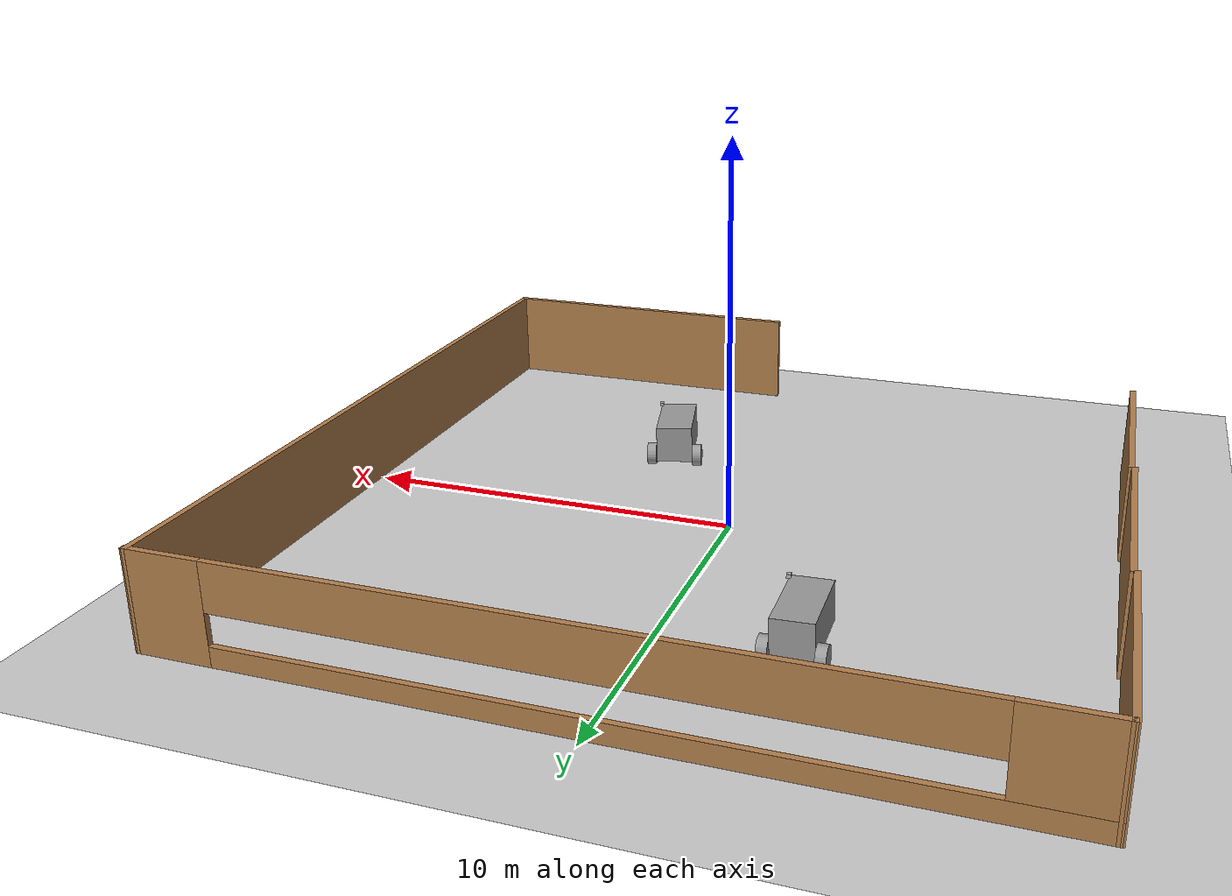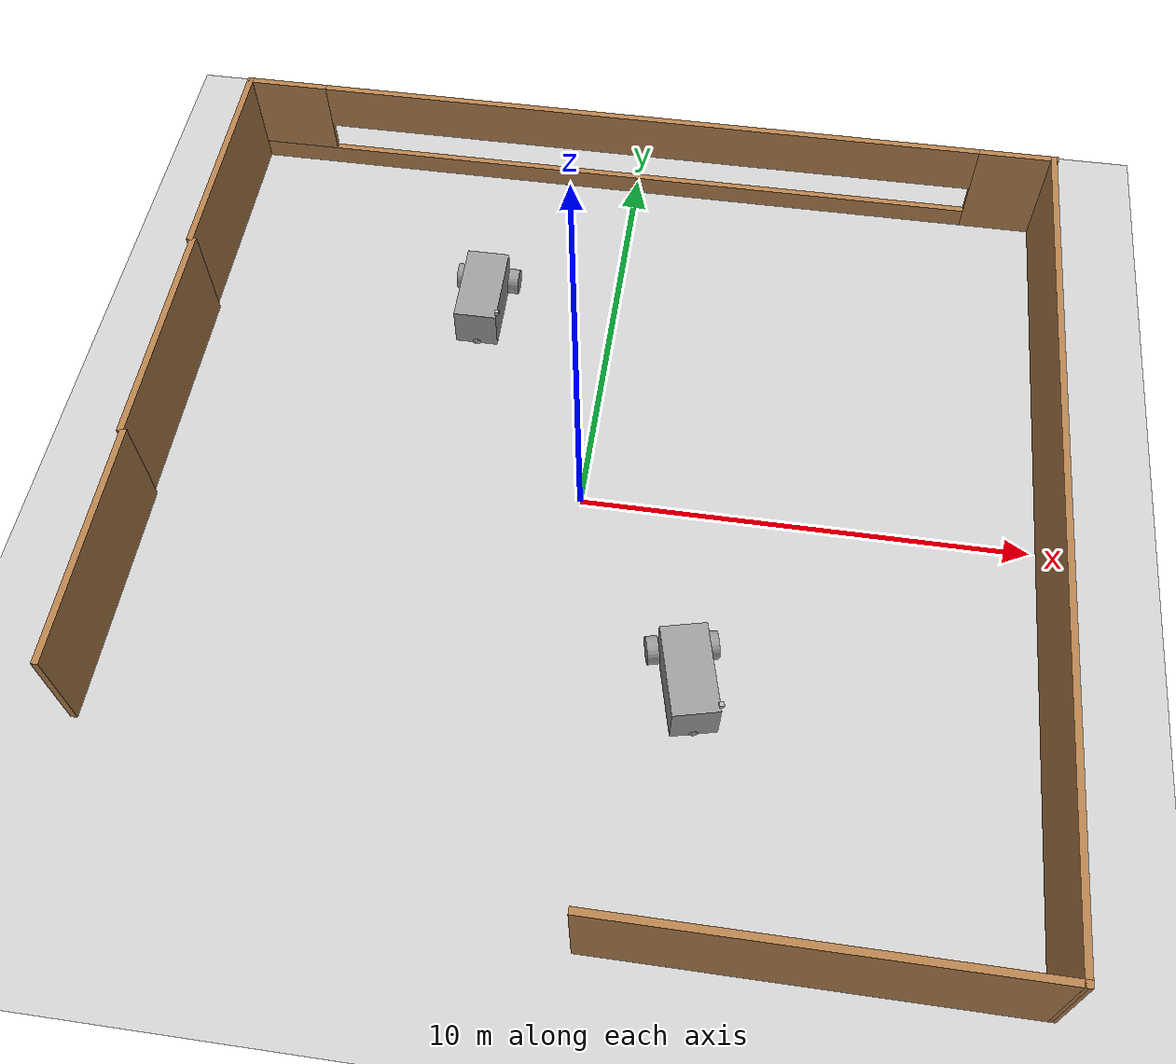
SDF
<sdf version="1.4">
 <world name="default">
  <plugin name="hello_world" filename="libhello_world.so"/>
  <light name="sun" type="directional">
   <pose>0 0 10 0 -0 0</pose>
   <diffuse>0.8 0.8 0.8 1</diffuse>
   <specular>0.2 0.2 0.2 1</specular>
   <attenuation>
    <range>1000</range>
    <constant>0.9</constant>
    <linear>0.01</linear>
    <quadratic>0.001</quadratic>
   </attenuation>
   <direction>-0.5 0.1 -0.9</direction>
  </light>
  <model name="ground_plane">
   <static>1</static>
   <link name="link">
    <collision name="collision">
     <geometry><plane><normal>0 0 1</normal><size>100 100</size></plane></geometry>
     <surface><friction><ode><mu>100</mu><mu2>50</mu2></ode></friction></surface>
    </collision>
    <visual name="visual">
     <cast_shadows>0</cast_shadows>
     <geometry><plane><normal>0 0 1</normal><size>100 100</size></plane></geometry>
     <material>
      <script><uri>file://media/materials/scripts/gazebo.material</uri><name>Gazebo/Grey</name></script>
     </material>
    </visual>
   </link>
  </model>
  <gravity>0 0 -9.8</gravity>
  <magnetic_field>6e-06 2.3e-05 -4.2e-05</magnetic_field>
  <atmosphere type="adiabatic"/>
  <physics name="default_physics" default="0" type="ode">
   <max_step_size>0.001</max_step_size>
   <real_time_factor>1</real_time_factor>
   <real_time_update_rate>1000</real_time_update_rate>
  </physics>
  <scene><ambient>0.4 0.4 0.4 1</ambient><background>0.7 0.7 0.7 1</background><shadows>1</shadows></scene>
  <audio><device>default</device></audio>
  <spherical_coordinates>
   <surface_model>EARTH_WGS84</surface_model>
   <latitude_deg>0</latitude_deg>
   <longitude_deg>0</longitude_deg>
   <elevation>0</elevation>
   <heading_deg>0</heading_deg>
  </spherical_coordinates>
  <model name="our_vehical">
   <link name="link">
    <inertial>
     <mass>1</mass>
     <inertia>
      <ixx>0.122564</ixx>
      <ixy>0</ixy>
      <ixz>0</ixz>
      <iyy>0.407773</iyy>
      <iyz>0</iyz>
      <izz>0.472213</izz>
     </inertia>
    </inertial>
    <pose>-0.506092 0.015491 0.633607 0 -0 0</pose>
    <visual name="visual">
     <geometry><box><size>2 1 1</size></box></geometry>
     <material>
      <script><name>Gazebo/Grey</name><uri>file://media/materials/scripts/gazebo.material</uri></script>
      <shader type="vertex"><normal_map>__default__</normal_map></shader>
      <ambient>0.3 0.3 0.3 1</ambient>
      <diffuse>0.7 0.7 0.7 1</diffuse>
      <specular>0.01 0.01 0.01 1</specular>
      <emissive>0 0 0 1</emissive>
     </material>
    </visual>
    <collision name="collision">
     <geometry><box><size>2 1 1</size></box></geometry>
     <surface>
      <friction>
       <ode><mu>1</mu><mu2>1</mu2><fdir1>0 0 0</fdir1><slip1>0</slip1><slip2>0</slip2></ode>
       <torsional>
        <coefficient>1</coefficient>
        <patch_radius>0</patch_radius>
        <surface_radius>0</surface_radius>
        <use_patch_radius>1</use_patch_radius>
        <ode><slip>0</slip></ode>
       </torsional>
      </friction>
      <bounce><restitution_coefficient>0</restitution_coefficient><threshold>1e+06</threshold></bounce>
      <contact>
       <collide_without_contact>0</collide_without_contact>
       <collide_without_contact_bitmask>1</collide_without_contact_bitmask>
       <collide_bitmask>1</collide_bitmask>
       <ode>
        <soft_cfm>0</soft_cfm>
        <soft_erp>0.2</soft_erp>
        <kp>1e+13</kp>
        <kd>1</kd>
        <max_vel>0.01</max_vel>
        <min_depth>0</min_depth>
       </ode>
       <bullet>
        <split_impulse>1</split_impulse>
        <split_impulse_penetration_threshold>-0.01</split_impulse_penetration_threshold>
        <soft_cfm>0</soft_cfm>
        <soft_erp>0.2</soft_erp>
        <kp>1e+13</kp>
        <kd>1</kd>
       </bullet>
      </contact>
     </surface>
    </collision>
   </link>
   <link name="link_0">
    <inertial>
     <mass>1</mass>
     <inertia><ixx>0.145833</ixx><ixy>0</ixy><ixz>0</ixz><iyy>0.145833</iyy><iyz>0</iyz><izz>0.125</izz></inertia>
    </inertial>
    <pose>0.38 0.650048 0.301789 1.5707 -0 0</pose>
    <visual name="visual">
     <geometry><cylinder><radius>0.3</radius><length>0.25</length></cylinder></geometry>
     <material>
      <lighting>1</lighting>
      <script><uri>file://media/materials/scripts/gazebo.material</uri><name>Gazebo/Grey</name></script>
      <shader type="vertex"><normal_map>__default__</normal_map></shader>
      <ambient>0.3 0.3 0.3 1</ambient>
      <diffuse>0.7 0.7 0.7 1</diffuse>
      <specular>0.01 0.01 0.01 1</specular>
      <emissive>0 0 0 1</emissive>
     </material>
    </visual>
    <collision name="collision">
     <geometry><cylinder><radius>0.3</radius><length>0.25</length></cylinder></geometry>
     <surface>
      <friction>
       <ode><mu>1</mu><mu2>1</mu2><fdir1>0 0 0</fdir1><slip1>0</slip1><slip2>0</slip2></ode>
       <torsional>
        <coefficient>1</coefficient>
        <patch_radius>0</patch_radius>
        <surface_radius>0</surface_radius>
        <use_patch_radius>1</use_patch_radius>
        <ode><slip>0</slip></ode>
       </torsional>
      </friction>
      <bounce><restitution_coefficient>0</restitution_coefficient><threshold>1e+06</threshold></bounce>
      <contact>
       <collide_without_contact>0</collide_without_contact>
       <collide_without_contact_bitmask>1</collide_without_contact_bitmask>
       <collide_bitmask>1</collide_bitmask>
       <ode>
        <soft_cfm>0</soft_cfm>
        <soft_erp>0.2</soft_erp>
        <kp>1e+13</kp>
        <kd>1</kd>
        <max_vel>0.01</max_vel>
        <min_depth>0</min_depth>
       </ode>
       <bullet>
        <split_impulse>1</split_impulse>
        <split_impulse_penetration_threshold>-0.01</split_impulse_penetration_threshold>
        <soft_cfm>0</soft_cfm>
        <soft_erp>0.2</soft_erp>
        <kp>1e+13</kp>
        <kd>1</kd>
       </bullet>
      </contact>
     </surface>
    </collision>
   </link>
   <link name="link_0_clone">
    <inertial>
     <mass>1</mass>
     <inertia><ixx>0.145833</ixx><ixy>0</ixy><ixz>0</ixz><iyy>0.145833</iyy><iyz>0</iyz><izz>0.125</izz></inertia>
    </inertial>
    <pose>0.357708 -0.619949 0.327389 1.5707 -0 0</pose>
    <visual name="visual">
     <geometry><cylinder><radius>0.3</radius><length>0.25</length></cylinder></geometry>
     <material>
      <lighting>1</lighting>
      <script><uri>file://media/materials/scripts/gazebo.material</uri><name>Gazebo/Grey</name></script>
      <shader type="vertex"><normal_map>__default__</normal_map></shader>
      <ambient>0.3 0.3 0.3 1</ambient>
      <diffuse>0.7 0.7 0.7 1</diffuse>
      <specular>0.01 0.01 0.01 1</specular>
      <emissive>0 0 0 1</emissive>
     </material>
    </visual>
    <collision name="collision">
     <geometry><cylinder><radius>0.3</radius><length>0.25</length></cylinder></geometry>
     <surface>
      <friction>
       <ode><mu>1</mu><mu2>1</mu2><fdir1>0 0 0</fdir1><slip1>0</slip1><slip2>0</slip2></ode>
       <torsional>
        <coefficient>1</coefficient>
        <patch_radius>0</patch_radius>
        <surface_radius>0</surface_radius>
        <use_patch_radius>1</use_patch_radius>
        <ode><slip>0</slip></ode>
       </torsional>
      </friction>
      <bounce><restitution_coefficient>0</restitution_coefficient><threshold>1e+06</threshold></bounce>
      <contact>
       <collide_without_contact>0</collide_without_contact>
       <collide_without_contact_bitmask>1</collide_without_contact_bitmask>
       <collide_bitmask>1</collide_bitmask>
       <ode>
        <soft_cfm>0</soft_cfm>
        <soft_erp>0.2</soft_erp>
        <kp>1e+13</kp>
        <kd>1</kd>
        <max_vel>0.01</max_vel>
        <min_depth>0</min_depth>
       </ode>
       <bullet>
        <split_impulse>1</split_impulse>
        <split_impulse_penetration_threshold>-0.01</split_impulse_penetration_threshold>
        <soft_cfm>0</soft_cfm>
        <soft_erp>0.2</soft_erp>
        <kp>1e+13</kp>
        <kd>1</kd>
       </bullet>
      </contact>
     </surface>
    </collision>
   </link>
   <link name="link_1">
    <inertial>
     <mass>1</mass>
     <inertia><ixx>0.1</ixx><ixy>0</ixy><ixz>0</ixz><iyy>0.1</iyy><iyz>0</iyz><izz>0.1</izz></inertia>
    </inertial>
    <pose>-1.39104 0.018049 0.161103 0 -0 0</pose>
    <visual name="visual">
     <geometry><sphere><radius>0.15</radius></sphere></geometry>
     <material>
      <lighting>1</lighting>
      <script><uri>file://media/materials/scripts/gazebo.material</uri><name>Gazebo/Grey</name></script>
      <shader type="vertex"><normal_map>__default__</normal_map></shader>
      <ambient>0.3 0.3 0.3 1</ambient>
      <diffuse>0.7 0.7 0.7 1</diffuse>
      <specular>0.01 0.01 0.01 1</specular>
      <emissive>0 0 0 1</emissive>
     </material>
    </visual>
    <collision name="collision">
     <geometry><sphere><radius>0.15</radius></sphere></geometry>
     <surface>
      <friction>
       <ode><mu>1</mu><mu2>1</mu2><fdir1>0 0 0</fdir1><slip1>0</slip1><slip2>0</slip2></ode>
       <torsional>
        <coefficient>1</coefficient>
        <patch_radius>0</patch_radius>
        <surface_radius>0</surface_radius>
        <use_patch_radius>1</use_patch_radius>
        <ode><slip>0</slip></ode>
       </torsional>
      </friction>
      <bounce><restitution_coefficient>0</restitution_coefficient><threshold>1e+06</threshold></bounce>
      <contact>
       <collide_without_contact>0</collide_without_contact>
       <collide_without_contact_bitmask>1</collide_without_contact_bitmask>
       <collide_bitmask>1</collide_bitmask>
       <ode>
        <soft_cfm>0</soft_cfm>
        <soft_erp>0.2</soft_erp>
        <kp>1e+13</kp>
        <kd>1</kd>
        <max_vel>0.01</max_vel>
        <min_depth>0</min_depth>
       </ode>
       <bullet>
        <split_impulse>1</split_impulse>
        <split_impulse_penetration_threshold>-0.01</split_impulse_penetration_threshold>
        <soft_cfm>0</soft_cfm>
        <soft_erp>0.2</soft_erp>
        <kp>1e+13</kp>
        <kd>1</kd>
       </bullet>
      </contact>
     </surface>
    </collision>
   </link>
   <model name="camera">
    <pose>-1.37481 -0.495871 1.17973 0 -0 0</pose>
    <link name="link">
     <inertial>
      <mass>0.1</mass>
      <inertia>
       <ixx>0.000166667</ixx>
       <iyy>0.000166667</iyy>
       <izz>0.000166667</izz>
       <ixy>0</ixy>
       <ixz>0</ixz>
       <iyz>0</iyz>
      </inertia>
     </inertial>
     <collision name="collision"><geometry><box><size>0.1 0.1 0.1</size></box></geometry></collision>
     <visual name="visual"><geometry><box><size>0.1 0.1 0.1</size></box></geometry></visual>
     <sensor name="camera" type="camera">
      <camera name="__default__">
       <horizontal_fov>1.047</horizontal_fov>
       <image><width>320</width><height>240</height></image>
       <clip><near>0.1</near><far>100</far></clip>
      </camera>
      <always_on>1</always_on>
      <update_rate>30</update_rate>
      <visualize>1</visualize>
     </sensor>
    </link>
   </model>
   <joint name="link_JOINT_0" type="revolute">
    <parent>link</parent>
    <child>link_0</child>
    <axis>
     <xyz>0 0 1</xyz>
     <use_parent_model_frame>0</use_parent_model_frame>
     <limit>
      <lower>-1.79769e+308</lower>
      <upper>1.79769e+308</upper>
      <effort>-1</effort>
      <velocity>-1</velocity>
     </limit>
     <dynamics>
      <spring_reference>0</spring_reference>
      <spring_stiffness>0</spring_stiffness>
      <damping>0</damping>
      <friction>0</friction>
     </dynamics>
    </axis>
    <physics>
     <ode><limit><cfm>0</cfm><erp>0.2</erp></limit><suspension><cfm>0</cfm><erp>0.2</erp></suspension></ode>
    </physics>
   </joint>
   <joint name="link_JOINT_2" type="revolute">
    <parent>link</parent>
    <child>link_0_clone</child>
    <axis>
     <xyz>0 0 1</xyz>
     <use_parent_model_frame>0</use_parent_model_frame>
     <limit>
      <lower>-1.79769e+308</lower>
      <upper>1.79769e+308</upper>
      <effort>-1</effort>
      <velocity>-1</velocity>
     </limit>
     <dynamics>
      <spring_reference>0</spring_reference>
      <spring_stiffness>0</spring_stiffness>
      <damping>0</damping>
      <friction>0</friction>
     </dynamics>
    </axis>
    <physics>
     <ode><limit><cfm>0</cfm><erp>0.2</erp></limit><suspension><cfm>0</cfm><erp>0.2</erp></suspension></ode>
    </physics>
   </joint>
   <joint name="link_JOINT_3" type="ball">
    <parent>link</parent>
    <child>link_1</child>
    <physics>
     <ode><limit><cfm>0</cfm><erp>0.2</erp></limit><suspension><cfm>0</cfm><erp>0.2</erp></suspension></ode>
    </physics>
   </joint>
   <joint name="link_JOINT_7" type="revolute">
    <parent>link</parent>
    <child>camera::link</child>
    <axis>
     <xyz>1 0 0</xyz>
     <use_parent_model_frame>0</use_parent_model_frame>
     <limit>
      <lower>-1.79769e+308</lower>
      <upper>1.79769e+308</upper>
      <effort>-1</effort>
      <velocity>-1</velocity>
     </limit>
     <dynamics>
      <spring_reference>0</spring_reference>
      <spring_stiffness>0</spring_stiffness>
      <damping>0</damping>
      <friction>0</friction>
     </dynamics>
    </axis>
    <physics>
     <ode><limit><cfm>0</cfm><erp>0.2</erp></limit><suspension><cfm>0</cfm><erp>0.2</erp></suspension></ode>
    </physics>
   </joint>
   <static>0</static>
   <plugin name="follower" filename="libFollowerPlugin.so"/>
   <pose>-3.1874 5.57615 -0.012182 0.020164 0.000538 1.58912</pose>
  </model>
  <model name="newwall">
   <link name="Wall_3">
    <pose>5.66053 -9.81794 0 0 -0 0</pose>
    <visual name="Wall_3_Visual">
     <pose>0 0 1.25 0 -0 0</pose>
     <geometry><box><size>9 0.15 2.5</size></box></geometry>
     <material>
      <script><uri>file://media/materials/scripts/gazebo.material</uri><name>Gazebo/Wood</name></script>
      <ambient>1 1 1 1</ambient>
     </material>
     <meta><layer>0</layer></meta>
    </visual>
    <collision name="Wall_3_Collision">
     <pose>0 0 1.25 0 -0 0</pose>
     <geometry><box><size>9 0.15 2.5</size></box></geometry>
     <surface>
      <friction>
       <ode><mu>1</mu><mu2>1</mu2><fdir1>0 0 0</fdir1><slip1>0</slip1><slip2>0</slip2></ode>
       <torsional>
        <coefficient>1</coefficient>
        <patch_radius>0</patch_radius>
        <surface_radius>0</surface_radius>
        <use_patch_radius>1</use_patch_radius>
        <ode><slip>0</slip></ode>
       </torsional>
      </friction>
      <bounce><restitution_coefficient>0</restitution_coefficient><threshold>1e+06</threshold></bounce>
      <contact>
       <collide_without_contact>0</collide_without_contact>
       <collide_without_contact_bitmask>1</collide_without_contact_bitmask>
       <collide_bitmask>1</collide_bitmask>
       <ode>
        <soft_cfm>0</soft_cfm>
        <soft_erp>0.2</soft_erp>
        <kp>1e+13</kp>
        <kd>1</kd>
        <max_vel>0.01</max_vel>
        <min_depth>0</min_depth>
       </ode>
       <bullet>
        <split_impulse>1</split_impulse>
        <split_impulse_penetration_threshold>-0.01</split_impulse_penetration_threshold>
        <soft_cfm>0</soft_cfm>
        <soft_erp>0.2</soft_erp>
        <kp>1e+13</kp>
        <kd>1</kd>
       </bullet>
      </contact>
     </surface>
    </collision>
   </link>
   <link name="Wall_4">
    <pose>10.0504 -0.000352 0 0 -0 1.57438</pose>
    <visual name="Wall_4_Visual">
     <pose>0 0 1.25 0 -0 0</pose>
     <geometry><box><size>19.7853 0.15 2.5</size></box></geometry>
     <material>
      <script><uri>file://media/materials/scripts/gazebo.material</uri><name>Gazebo/Wood</name></script>
      <ambient>1 1 1 1</ambient>
     </material>
     <meta><layer>0</layer></meta>
    </visual>
    <collision name="Wall_4_Collision">
     <pose>0 0 1.25 0 -0 0</pose>
     <geometry><box><size>19.7853 0.15 2.5</size></box></geometry>
     <surface>
      <friction>
       <ode><mu>1</mu><mu2>1</mu2><fdir1>0 0 0</fdir1><slip1>0</slip1><slip2>0</slip2></ode>
       <torsional>
        <coefficient>1</coefficient>
        <patch_radius>0</patch_radius>
        <surface_radius>0</surface_radius>
        <use_patch_radius>1</use_patch_radius>
        <ode><slip>0</slip></ode>
       </torsional>
      </friction>
      <bounce><restitution_coefficient>0</restitution_coefficient><threshold>1e+06</threshold></bounce>
      <contact>
       <collide_without_contact>0</collide_without_contact>
       <collide_without_contact_bitmask>1</collide_without_contact_bitmask>
       <collide_bitmask>1</collide_bitmask>
       <ode>
        <soft_cfm>0</soft_cfm>
        <soft_erp>0.2</soft_erp>
        <kp>1e+13</kp>
        <kd>1</kd>
        <max_vel>0.01</max_vel>
        <min_depth>0</min_depth>
       </ode>
       <bullet>
        <split_impulse>1</split_impulse>
        <split_impulse_penetration_threshold>-0.01</split_impulse_penetration_threshold>
        <soft_cfm>0</soft_cfm>
        <soft_erp>0.2</soft_erp>
        <kp>1e+13</kp>
        <kd>1</kd>
       </bullet>
      </contact>
     </surface>
    </collision>
   </link>
   <link name="Wall_5">
    <pose>0.000352 9.81724 0 0 -0 3.14159</pose>
    <visual name="Wall_5_Visual_1">
     <pose>0.955299 0 0.25 0 -0 0</pose>
     <geometry><box><size>18.3394 0.15 0.5</size></box></geometry>
     <material>
      <script><uri>file://media/materials/scripts/gazebo.material</uri><name>Gazebo/Wood</name></script>
      <ambient>1 1 1 1</ambient>
     </material>
     <meta><layer>0</layer></meta>
    </visual>
    <visual name="Wall_5_Visual_0">
     <pose>-9.1697 0 1.25 0 -0 0</pose>
     <geometry><box><size>1.9106 0.15 2.5</size></box></geometry>
     <material>
      <script><uri>file://media/materials/scripts/gazebo.material</uri><name>Gazebo/Wood</name></script>
      <ambient>1 1 1 1</ambient>
     </material>
     <meta><layer>0</layer></meta>
    </visual>
    <visual name="Wall_5_Visual_2">
     <pose>9.12254 0 1.5 0 -0 0</pose>
     <geometry><box><size>2.00492 0.15 2</size></box></geometry>
     <material>
      <script><uri>file://media/materials/scripts/gazebo.material</uri><name>Gazebo/Wood</name></script>
      <ambient>1 1 1 1</ambient>
     </material>
     <meta><layer>0</layer></meta>
    </visual>
    <visual name="Wall_5_Visual_3">
     <pose>-0.04716 0 1.9 0 -0 0</pose>
     <geometry><box><size>16.3345 0.15 1.2</size></box></geometry>
     <material>
      <script><uri>file://media/materials/scripts/gazebo.material</uri><name>Gazebo/Wood</name></script>
      <ambient>1 1 1 1</ambient>
     </material>
     <meta><layer>0</layer></meta>
    </visual>
    <collision name="Wall_5_Collision_1">
     <pose>0.955299 0 0.25 0 -0 0</pose>
     <geometry><box><size>18.3394 0.15 0.5</size></box></geometry>
     <surface>
      <friction>
       <ode><mu>1</mu><mu2>1</mu2><fdir1>0 0 0</fdir1><slip1>0</slip1><slip2>0</slip2></ode>
       <torsional>
        <coefficient>1</coefficient>
        <patch_radius>0</patch_radius>
        <surface_radius>0</surface_radius>
        <use_patch_radius>1</use_patch_radius>
        <ode><slip>0</slip></ode>
       </torsional>
      </friction>
      <bounce><restitution_coefficient>0</restitution_coefficient><threshold>1e+06</threshold></bounce>
      <contact>
       <collide_without_contact>0</collide_without_contact>
       <collide_without_contact_bitmask>1</collide_without_contact_bitmask>
       <collide_bitmask>1</collide_bitmask>
       <ode>
        <soft_cfm>0</soft_cfm>
        <soft_erp>0.2</soft_erp>
        <kp>1e+13</kp>
        <kd>1</kd>
        <max_vel>0.01</max_vel>
        <min_depth>0</min_depth>
       </ode>
       <bullet>
        <split_impulse>1</split_impulse>
        <split_impulse_penetration_threshold>-0.01</split_impulse_penetration_threshold>
        <soft_cfm>0</soft_cfm>
        <soft_erp>0.2</soft_erp>
        <kp>1e+13</kp>
        <kd>1</kd>
       </bullet>
      </contact>
     </surface>
    </collision>
    <collision name="Wall_5_Collision_2">
     <pose>9.12254 0 1.5 0 -0 0</pose>
     <geometry><box><size>2.00492 0.15 2</size></box></geometry>
     <surface>
      <friction>
       <ode><mu>1</mu><mu2>1</mu2><fdir1>0 0 0</fdir1><slip1>0</slip1><slip2>0</slip2></ode>
       <torsional>
        <coefficient>1</coefficient>
        <patch_radius>0</patch_radius>
        <surface_radius>0</surface_radius>
        <use_patch_radius>1</use_patch_radius>
        <ode><slip>0</slip></ode>
       </torsional>
      </friction>
      <bounce><restitution_coefficient>0</restitution_coefficient><threshold>1e+06</threshold></bounce>
      <contact>
       <collide_without_contact>0</collide_without_contact>
       <collide_without_contact_bitmask>1</collide_without_contact_bitmask>
       <collide_bitmask>1</collide_bitmask>
       <ode>
        <soft_cfm>0</soft_cfm>
        <soft_erp>0.2</soft_erp>
        <kp>1e+13</kp>
        <kd>1</kd>
        <max_vel>0.01</max_vel>
        <min_depth>0</min_depth>
       </ode>
       <bullet>
        <split_impulse>1</split_impulse>
        <split_impulse_penetration_threshold>-0.01</split_impulse_penetration_threshold>
        <soft_cfm>0</soft_cfm>
        <soft_erp>0.2</soft_erp>
        <kp>1e+13</kp>
        <kd>1</kd>
       </bullet>
      </contact>
     </surface>
    </collision>
    <collision name="Wall_5_Collision_0">
     <pose>-9.1697 0 1.25 0 -0 0</pose>
     <geometry><box><size>1.9106 0.15 2.5</size></box></geometry>
     <surface>
      <friction>
       <ode><mu>1</mu><mu2>1</mu2><fdir1>0 0 0</fdir1><slip1>0</slip1><slip2>0</slip2></ode>
       <torsional>
        <coefficient>1</coefficient>
        <patch_radius>0</patch_radius>
        <surface_radius>0</surface_radius>
        <use_patch_radius>1</use_patch_radius>
        <ode><slip>0</slip></ode>
       </torsional>
      </friction>
      <bounce><restitution_coefficient>0</restitution_coefficient><threshold>1e+06</threshold></bounce>
      <contact>
       <collide_without_contact>0</collide_without_contact>
       <collide_without_contact_bitmask>1</collide_without_contact_bitmask>
       <collide_bitmask>1</collide_bitmask>
       <ode>
        <soft_cfm>0</soft_cfm>
        <soft_erp>0.2</soft_erp>
        <kp>1e+13</kp>
        <kd>1</kd>
        <max_vel>0.01</max_vel>
        <min_depth>0</min_depth>
       </ode>
       <bullet>
        <split_impulse>1</split_impulse>
        <split_impulse_penetration_threshold>-0.01</split_impulse_penetration_threshold>
        <soft_cfm>0</soft_cfm>
        <soft_erp>0.2</soft_erp>
        <kp>1e+13</kp>
        <kd>1</kd>
       </bullet>
      </contact>
     </surface>
    </collision>
    <collision name="Wall_5_Collision_3">
     <pose>-0.04716 0 1.9 0 -0 0</pose>
     <geometry><box><size>16.3345 0.15 1.2</size></box></geometry>
     <surface>
      <friction>
       <ode><mu>1</mu><mu2>1</mu2><fdir1>0 0 0</fdir1><slip1>0</slip1><slip2>0</slip2></ode>
       <torsional>
        <coefficient>1</coefficient>
        <patch_radius>0</patch_radius>
        <surface_radius>0</surface_radius>
        <use_patch_radius>1</use_patch_radius>
        <ode><slip>0</slip></ode>
       </torsional>
      </friction>
      <bounce><restitution_coefficient>0</restitution_coefficient><threshold>1e+06</threshold></bounce>
      <contact>
       <collide_without_contact>0</collide_without_contact>
       <collide_without_contact_bitmask>1</collide_without_contact_bitmask>
       <collide_bitmask>1</collide_bitmask>
       <ode>
        <soft_cfm>0</soft_cfm>
        <soft_erp>0.2</soft_erp>
        <kp>1e+13</kp>
        <kd>1</kd>
        <max_vel>0.01</max_vel>
        <min_depth>0</min_depth>
       </ode>
       <bullet>
        <split_impulse>1</split_impulse>
        <split_impulse_penetration_threshold>-0.01</split_impulse_penetration_threshold>
        <soft_cfm>0</soft_cfm>
        <soft_erp>0.2</soft_erp>
        <kp>1e+13</kp>
        <kd>1</kd>
       </bullet>
      </contact>
     </surface>
    </collision>
   </link>
   <link name="Wall_6">
    <pose>-10.0496 7.12465 0 0 0 -1.55773</pose>
    <visual name="Wall_6_Visual">
     <pose>0 0 1.25 0 -0 0</pose>
     <geometry><box><size>5.53564 0.15 2.5</size></box></geometry>
     <material>
      <script><uri>file://media/materials/scripts/gazebo.material</uri><name>Gazebo/Wood</name></script>
      <ambient>1 1 1 1</ambient>
     </material>
     <meta><layer>0</layer></meta>
    </visual>
    <collision name="Wall_6_Collision">
     <pose>0 0 1.25 0 -0 0</pose>
     <geometry><box><size>5.53564 0.15 2.5</size></box></geometry>
     <surface>
      <friction>
       <ode><mu>1</mu><mu2>1</mu2><fdir1>0 0 0</fdir1><slip1>0</slip1><slip2>0</slip2></ode>
       <torsional>
        <coefficient>1</coefficient>
        <patch_radius>0</patch_radius>
        <surface_radius>0</surface_radius>
        <use_patch_radius>1</use_patch_radius>
        <ode><slip>0</slip></ode>
       </torsional>
      </friction>
      <bounce><restitution_coefficient>0</restitution_coefficient><threshold>1e+06</threshold></bounce>
      <contact>
       <collide_without_contact>0</collide_without_contact>
       <collide_without_contact_bitmask>1</collide_without_contact_bitmask>
       <collide_bitmask>1</collide_bitmask>
       <ode>
        <soft_cfm>0</soft_cfm>
        <soft_erp>0.2</soft_erp>
        <kp>1e+13</kp>
        <kd>1</kd>
        <max_vel>0.01</max_vel>
        <min_depth>0</min_depth>
       </ode>
       <bullet>
        <split_impulse>1</split_impulse>
        <split_impulse_penetration_threshold>-0.01</split_impulse_penetration_threshold>
        <soft_cfm>0</soft_cfm>
        <soft_erp>0.2</soft_erp>
        <kp>1e+13</kp>
        <kd>1</kd>
       </bullet>
      </contact>
     </surface>
    </collision>
   </link>
   <link name="Wall_6_clone">
    <pose>-9.90066 1.65834 0 0 0 -1.55773</pose>
    <visual name="Wall_6_Visual">
     <pose>0 0 1.25 0 -0 0</pose>
     <geometry><box><size>5.53564 0.15 2.5</size></box></geometry>
     <material>
      <script><uri>file://media/materials/scripts/gazebo.material</uri><name>Gazebo/Wood</name></script>
      <ambient>1 1 1 1</ambient>
      <shader type="pixel"/>
     </material>
     <meta><layer>0</layer></meta>
    </visual>
    <collision name="Wall_6_Collision">
     <pose>0 0 1.25 0 -0 0</pose>
     <geometry><box><size>5.53564 0.15 2.5</size></box></geometry>
     <surface>
      <friction>
       <ode><mu>1</mu><mu2>1</mu2><fdir1>0 0 0</fdir1><slip1>0</slip1><slip2>0</slip2></ode>
       <torsional>
        <coefficient>1</coefficient>
        <patch_radius>0</patch_radius>
        <surface_radius>0</surface_radius>
        <use_patch_radius>1</use_patch_radius>
        <ode><slip>0</slip></ode>
       </torsional>
      </friction>
      <bounce><restitution_coefficient>0</restitution_coefficient><threshold>1e+06</threshold></bounce>
      <contact>
       <collide_without_contact>0</collide_without_contact>
       <collide_without_contact_bitmask>1</collide_without_contact_bitmask>
       <collide_bitmask>1</collide_bitmask>
       <ode>
        <soft_cfm>0</soft_cfm>
        <soft_erp>0.2</soft_erp>
        <kp>1e+13</kp>
        <kd>1</kd>
        <max_vel>0.01</max_vel>
        <min_depth>0</min_depth>
       </ode>
       <bullet>
        <split_impulse>1</split_impulse>
        <split_impulse_penetration_threshold>-0.01</split_impulse_penetration_threshold>
        <soft_cfm>0</soft_cfm>
        <soft_erp>0.2</soft_erp>
        <kp>1e+13</kp>
        <kd>1</kd>
       </bullet>
      </contact>
     </surface>
    </collision>
   </link>
   <link name="Wall_6_clone_0">
    <pose>-9.75901 -3.82552 0 0 0 -1.55773</pose>
    <visual name="Wall_6_Visual">
     <pose>0 0 1.25 0 -0 0</pose>
     <geometry><box><size>5.53564 0.15 2.5</size></box></geometry>
     <material>
      <script><uri>file://media/materials/scripts/gazebo.material</uri><name>Gazebo/Wood</name></script>
      <ambient>1 1 1 1</ambient>
      <shader type="pixel"/>
     </material>
     <meta><layer>0</layer></meta>
    </visual>
    <collision name="Wall_6_Collision">
     <pose>0 0 1.25 0 -0 0</pose>
     <geometry><box><size>5.53564 0.15 2.5</size></box></geometry>
     <surface>
      <friction>
       <ode><mu>1</mu><mu2>1</mu2><fdir1>0 0 0</fdir1><slip1>0</slip1><slip2>0</slip2></ode>
       <torsional>
        <coefficient>1</coefficient>
        <patch_radius>0</patch_radius>
        <surface_radius>0</surface_radius>
        <use_patch_radius>1</use_patch_radius>
        <ode><slip>0</slip></ode>
       </torsional>
      </friction>
      <bounce><restitution_coefficient>0</restitution_coefficient><threshold>1e+06</threshold></bounce>
      <contact>
       <collide_without_contact>0</collide_without_contact>
       <collide_without_contact_bitmask>1</collide_without_contact_bitmask>
       <collide_bitmask>1</collide_bitmask>
       <ode>
        <soft_cfm>0</soft_cfm>
        <soft_erp>0.2</soft_erp>
        <kp>1e+13</kp>
        <kd>1</kd>
        <max_vel>0.01</max_vel>
        <min_depth>0</min_depth>
       </ode>
       <bullet>
        <split_impulse>1</split_impulse>
        <split_impulse_penetration_threshold>-0.01</split_impulse_penetration_threshold>
        <soft_cfm>0</soft_cfm>
        <soft_erp>0.2</soft_erp>
        <kp>1e+13</kp>
        <kd>1</kd>
       </bullet>
      </contact>
     </surface>
    </collision>
   </link>
   <static>1</static>
   <pose>0.164469 -0.062058 0 0 -0 0</pose>
  </model>
  <model name="our_vehical_clone">
   <link name="link">
    <inertial>
     <mass>1</mass>
     <inertia>
      <ixx>0.122564</ixx>
      <ixy>0</ixy>
      <ixz>0</ixz>
      <iyy>0.407773</iyy>
      <iyz>0</iyz>
      <izz>0.472213</izz>
     </inertia>
    </inertial>
    <pose>-0.506092 0.015491 0.633607 0 -0 0</pose>
    <visual name="visual">
     <geometry><box><size>2 1 1</size></box></geometry>
     <material>
      <script><name>Gazebo/Grey</name><uri>file://media/materials/scripts/gazebo.material</uri></script>
      <shader type="vertex"><normal_map>__default__</normal_map></shader>
      <ambient>0.3 0.3 0.3 1</ambient>
      <diffuse>0.7 0.7 0.7 1</diffuse>
      <specular>0.01 0.01 0.01 1</specular>
      <emissive>0 0 0 1</emissive>
     </material>
    </visual>
    <collision name="collision">
     <geometry><box><size>2 1 1</size></box></geometry>
     <surface>
      <friction>
       <ode><mu>1</mu><mu2>1</mu2><fdir1>0 0 0</fdir1><slip1>0</slip1><slip2>0</slip2></ode>
       <torsional>
        <coefficient>1</coefficient>
        <patch_radius>0</patch_radius>
        <surface_radius>0</surface_radius>
        <use_patch_radius>1</use_patch_radius>
        <ode><slip>0</slip></ode>
       </torsional>
      </friction>
      <bounce><restitution_coefficient>0</restitution_coefficient><threshold>1e+06</threshold></bounce>
      <contact>
       <collide_without_contact>0</collide_without_contact>
       <collide_without_contact_bitmask>1</collide_without_contact_bitmask>
       <collide_bitmask>1</collide_bitmask>
       <ode>
        <soft_cfm>0</soft_cfm>
        <soft_erp>0.2</soft_erp>
        <kp>1e+13</kp>
        <kd>1</kd>
        <max_vel>0.01</max_vel>
        <min_depth>0</min_depth>
       </ode>
       <bullet>
        <split_impulse>1</split_impulse>
        <split_impulse_penetration_threshold>-0.01</split_impulse_penetration_threshold>
        <soft_cfm>0</soft_cfm>
        <soft_erp>0.2</soft_erp>
        <kp>1e+13</kp>
        <kd>1</kd>
       </bullet>
      </contact>
     </surface>
    </collision>
   </link>
   <link name="link_0">
    <inertial>
     <mass>1</mass>
     <inertia><ixx>0.145833</ixx><ixy>0</ixy><ixz>0</ixz><iyy>0.145833</iyy><iyz>0</iyz><izz>0.125</izz></inertia>
    </inertial>
    <pose>0.38 0.650048 0.301789 1.5707 -0 0</pose>
    <visual name="visual">
     <geometry><cylinder><radius>0.3</radius><length>0.25</length></cylinder></geometry>
     <material>
      <lighting>1</lighting>
      <script><uri>file://media/materials/scripts/gazebo.material</uri><name>Gazebo/Grey</name></script>
      <shader type="vertex"><normal_map>__default__</normal_map></shader>
      <ambient>0.3 0.3 0.3 1</ambient>
      <diffuse>0.7 0.7 0.7 1</diffuse>
      <specular>0.01 0.01 0.01 1</specular>
      <emissive>0 0 0 1</emissive>
     </material>
    </visual>
    <collision name="collision">
     <geometry><cylinder><radius>0.3</radius><length>0.25</length></cylinder></geometry>
     <surface>
      <friction>
       <ode><mu>1</mu><mu2>1</mu2><fdir1>0 0 0</fdir1><slip1>0</slip1><slip2>0</slip2></ode>
       <torsional>
        <coefficient>1</coefficient>
        <patch_radius>0</patch_radius>
        <surface_radius>0</surface_radius>
        <use_patch_radius>1</use_patch_radius>
        <ode><slip>0</slip></ode>
       </torsional>
      </friction>
      <bounce><restitution_coefficient>0</restitution_coefficient><threshold>1e+06</threshold></bounce>
      <contact>
       <collide_without_contact>0</collide_without_contact>
       <collide_without_contact_bitmask>1</collide_without_contact_bitmask>
       <collide_bitmask>1</collide_bitmask>
       <ode>
        <soft_cfm>0</soft_cfm>
        <soft_erp>0.2</soft_erp>
        <kp>1e+13</kp>
        <kd>1</kd>
        <max_vel>0.01</max_vel>
        <min_depth>0</min_depth>
       </ode>
       <bullet>
        <split_impulse>1</split_impulse>
        <split_impulse_penetration_threshold>-0.01</split_impulse_penetration_threshold>
        <soft_cfm>0</soft_cfm>
        <soft_erp>0.2</soft_erp>
        <kp>1e+13</kp>
        <kd>1</kd>
       </bullet>
      </contact>
     </surface>
    </collision>
   </link>
   <link name="link_0_clone">
    <inertial>
     <mass>1</mass>
     <inertia><ixx>0.145833</ixx><ixy>0</ixy><ixz>0</ixz><iyy>0.145833</iyy><iyz>0</iyz><izz>0.125</izz></inertia>
    </inertial>
    <pose>0.357708 -0.619949 0.327389 1.5707 -0 0</pose>
    <visual name="visual">
     <geometry><cylinder><radius>0.3</radius><length>0.25</length></cylinder></geometry>
     <material>
      <lighting>1</lighting>
      <script><uri>file://media/materials/scripts/gazebo.material</uri><name>Gazebo/Grey</name></script>
      <shader type="vertex"><normal_map>__default__</normal_map></shader>
      <ambient>0.3 0.3 0.3 1</ambient>
      <diffuse>0.7 0.7 0.7 1</diffuse>
      <specular>0.01 0.01 0.01 1</specular>
      <emissive>0 0 0 1</emissive>
     </material>
    </visual>
    <collision name="collision">
     <geometry><cylinder><radius>0.3</radius><length>0.25</length></cylinder></geometry>
     <surface>
      <friction>
       <ode><mu>1</mu><mu2>1</mu2><fdir1>0 0 0</fdir1><slip1>0</slip1><slip2>0</slip2></ode>
       <torsional>
        <coefficient>1</coefficient>
        <patch_radius>0</patch_radius>
        <surface_radius>0</surface_radius>
        <use_patch_radius>1</use_patch_radius>
        <ode><slip>0</slip></ode>
       </torsional>
      </friction>
      <bounce><restitution_coefficient>0</restitution_coefficient><threshold>1e+06</threshold></bounce>
      <contact>
       <collide_without_contact>0</collide_without_contact>
       <collide_without_contact_bitmask>1</collide_without_contact_bitmask>
       <collide_bitmask>1</collide_bitmask>
       <ode>
        <soft_cfm>0</soft_cfm>
        <soft_erp>0.2</soft_erp>
        <kp>1e+13</kp>
        <kd>1</kd>
        <max_vel>0.01</max_vel>
        <min_depth>0</min_depth>
       </ode>
       <bullet>
        <split_impulse>1</split_impulse>
        <split_impulse_penetration_threshold>-0.01</split_impulse_penetration_threshold>
        <soft_cfm>0</soft_cfm>
        <soft_erp>0.2</soft_erp>
        <kp>1e+13</kp>
        <kd>1</kd>
       </bullet>
      </contact>
     </surface>
    </collision>
   </link>
   <link name="link_1">
    <inertial>
     <mass>1</mass>
     <inertia><ixx>0.1</ixx><ixy>0</ixy><ixz>0</ixz><iyy>0.1</iyy><iyz>0</iyz><izz>0.1</izz></inertia>
    </inertial>
    <pose>-1.39104 0.018049 0.161103 0 -0 0</pose>
    <visual name="visual">
     <geometry><sphere><radius>0.15</radius></sphere></geometry>
     <material>
      <lighting>1</lighting>
      <script><uri>file://media/materials/scripts/gazebo.material</uri><name>Gazebo/Grey</name></script>
      <shader type="vertex"><normal_map>__default__</normal_map></shader>
      <ambient>0.3 0.3 0.3 1</ambient>
      <diffuse>0.7 0.7 0.7 1</diffuse>
      <specular>0.01 0.01 0.01 1</specular>
      <emissive>0 0 0 1</emissive>
     </material>
    </visual>
    <collision name="collision">
     <geometry><sphere><radius>0.15</radius></sphere></geometry>
     <surface>
      <friction>
       <ode><mu>1</mu><mu2>1</mu2><fdir1>0 0 0</fdir1><slip1>0</slip1><slip2>0</slip2></ode>
       <torsional>
        <coefficient>1</coefficient>
        <patch_radius>0</patch_radius>
        <surface_radius>0</surface_radius>
        <use_patch_radius>1</use_patch_radius>
        <ode><slip>0</slip></ode>
       </torsional>
      </friction>
      <bounce><restitution_coefficient>0</restitution_coefficient><threshold>1e+06</threshold></bounce>
      <contact>
       <collide_without_contact>0</collide_without_contact>
       <collide_without_contact_bitmask>1</collide_without_contact_bitmask>
       <collide_bitmask>1</collide_bitmask>
       <ode>
        <soft_cfm>0</soft_cfm>
        <soft_erp>0.2</soft_erp>
        <kp>1e+13</kp>
        <kd>1</kd>
        <max_vel>0.01</max_vel>
        <min_depth>0</min_depth>
       </ode>
       <bullet>
        <split_impulse>1</split_impulse>
        <split_impulse_penetration_threshold>-0.01</split_impulse_penetration_threshold>
        <soft_cfm>0</soft_cfm>
        <soft_erp>0.2</soft_erp>
        <kp>1e+13</kp>
        <kd>1</kd>
       </bullet>
      </contact>
     </surface>
    </collision>
   </link>
   <model name="camera">
    <pose>-1.37481 -0.495871 1.17973 0 -0 0</pose>
    <link name="link">
     <inertial>
      <mass>0.1</mass>
      <inertia>
       <ixx>0.000166667</ixx>
       <iyy>0.000166667</iyy>
       <izz>0.000166667</izz>
       <ixy>0</ixy>
       <ixz>0</ixz>
       <iyz>0</iyz>
      </inertia>
     </inertial>
     <collision name="collision"><geometry><box><size>0.1 0.1 0.1</size></box></geometry></collision>
     <visual name="visual"><geometry><box><size>0.1 0.1 0.1</size></box></geometry></visual>
     <sensor name="camera" type="camera">
      <camera name="__default__">
       <horizontal_fov>1.047</horizontal_fov>
       <image><width>320</width><height>240</height></image>
       <clip><near>0.1</near><far>100</far></clip>
      </camera>
      <always_on>1</always_on>
      <update_rate>30</update_rate>
      <visualize>1</visualize>
     </sensor>
    </link>
   </model>
   <joint name="link_JOINT_0" type="revolute">
    <parent>link</parent>
    <child>link_0</child>
    <axis>
     <xyz>0 0 1</xyz>
     <use_parent_model_frame>0</use_parent_model_frame>
     <limit>
      <lower>-1.79769e+308</lower>
      <upper>1.79769e+308</upper>
      <effort>-1</effort>
      <velocity>-1</velocity>
     </limit>
     <dynamics>
      <spring_reference>0</spring_reference>
      <spring_stiffness>0</spring_stiffness>
      <damping>0</damping>
      <friction>0</friction>
     </dynamics>
    </axis>
    <physics>
     <ode><limit><cfm>0</cfm><erp>0.2</erp></limit><suspension><cfm>0</cfm><erp>0.2</erp></suspension></ode>
    </physics>
   </joint>
   <joint name="link_JOINT_2" type="revolute">
    <parent>link</parent>
    <child>link_0_clone</child>
    <axis>
     <xyz>0 0 1</xyz>
     <use_parent_model_frame>0</use_parent_model_frame>
     <limit>
      <lower>-1.79769e+308</lower>
      <upper>1.79769e+308</upper>
      <effort>-1</effort>
      <velocity>-1</velocity>
     </limit>
     <dynamics>
      <spring_reference>0</spring_reference>
      <spring_stiffness>0</spring_stiffness>
      <damping>0</damping>
      <friction>0</friction>
     </dynamics>
    </axis>
    <physics>
     <ode><limit><cfm>0</cfm><erp>0.2</erp></limit><suspension><cfm>0</cfm><erp>0.2</erp></suspension></ode>
    </physics>
   </joint>
   <joint name="link_JOINT_3" type="ball">
    <parent>link</parent>
    <child>link_1</child>
    <physics>
     <ode><limit><cfm>0</cfm><erp>0.2</erp></limit><suspension><cfm>0</cfm><erp>0.2</erp></suspension></ode>
    </physics>
   </joint>
   <joint name="link_JOINT_7" type="revolute">
    <parent>link</parent>
    <child>camera::link</child>
    <axis>
     <xyz>1 0 0</xyz>
     <use_parent_model_frame>0</use_parent_model_frame>
     <limit>
      <lower>-1.79769e+308</lower>
      <upper>1.79769e+308</upper>
      <effort>-1</effort>
      <velocity>-1</velocity>
     </limit>
     <dynamics>
      <spring_reference>0</spring_reference>
      <spring_stiffness>0</spring_stiffness>
      <damping>0</damping>
      <friction>0</friction>
     </dynamics>
    </axis>
    <physics>
     <ode><limit><cfm>0</cfm><erp>0.2</erp></limit><suspension><cfm>0</cfm><erp>0.2</erp></suspension></ode>
    </physics>
   </joint>
   <static>0</static>
   <plugin name="follower" filename="libFollowerPlugin.so"/>
   <pose>2.77418 -3.84017 -0.012185 0.02016 0.000539 1.8165</pose>
  </model>
 </world>
</sdf>
